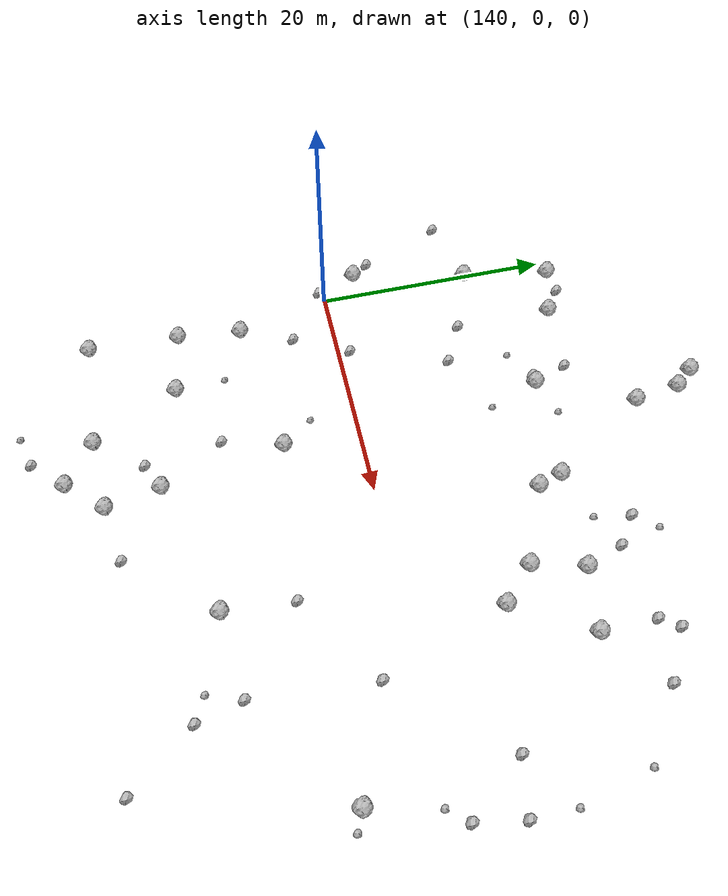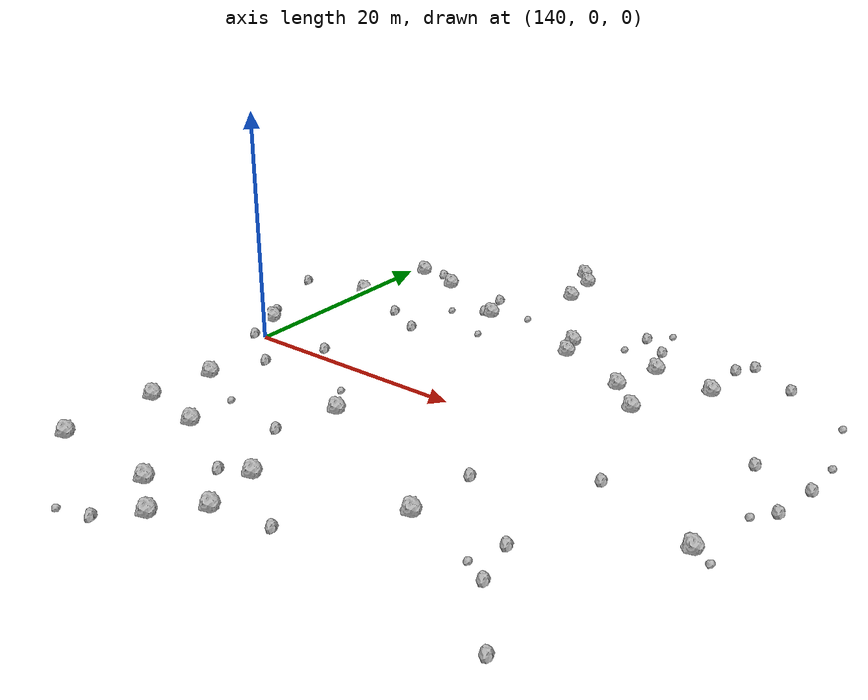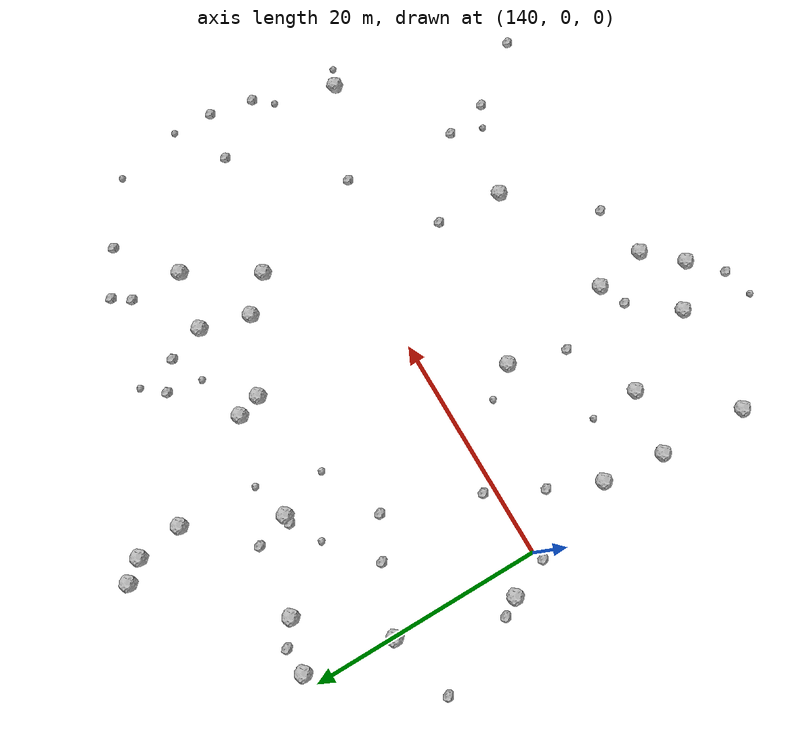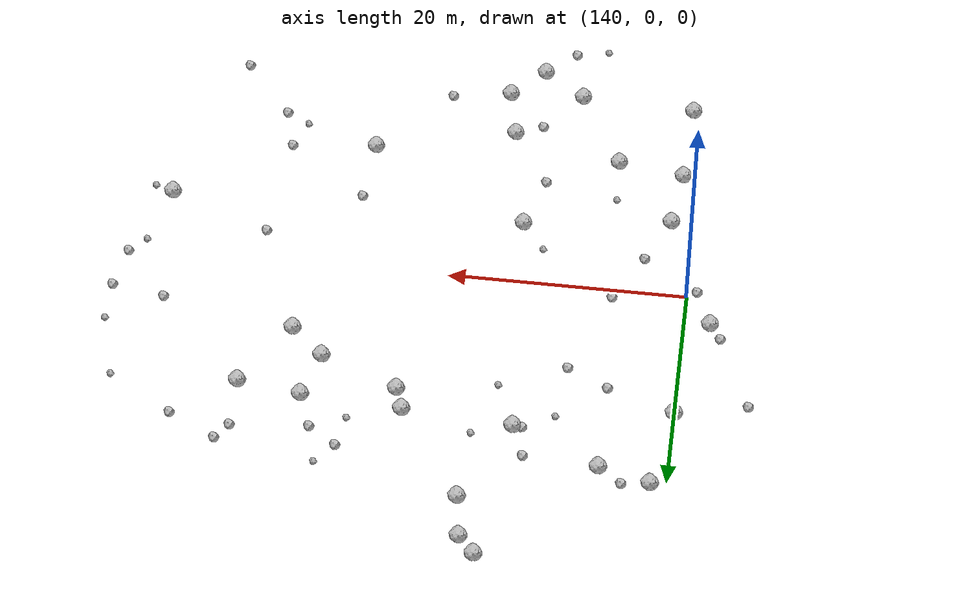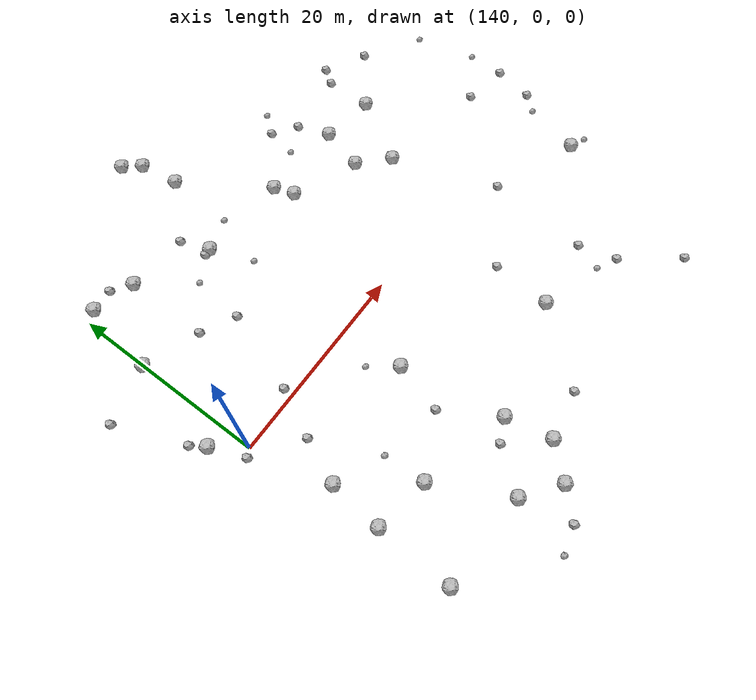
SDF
<sdf version="1.6">
 <world name="default">
  <include><uri>model://sun</uri></include>
  <model name="rock1_4_2">
   <include><uri>model://rock1</uri><pose>175.6944459059037 13.775110313037565 0.5 0 0 0</pose></include>
  </model>
  <model name="rock1_4_3">
   <include><uri>model://rock1</uri><pose>141.09596691448638 -21.29481997495491 0.5 0 0 0</pose></include>
  </model>
  <model name="rock1_4_4">
   <include><uri>model://rock1</uri><pose>154.2699961229659 -24.46903517349388 0.5 0 0 0</pose></include>
  </model>
  <model name="rock1_4_5">
   <include><uri>model://rock1</uri><pose>162.69205032178948 13.077078027829835 0.5 0 0 0</pose></include>
  </model>
  <model name="rock1_4_6">
   <include><uri>model://rock1</uri><pose>157.0335022908318 -21.496144907240357 0.5 0 0 0</pose></include>
  </model>
  <model name="rock1_4_7">
   <include><uri>model://rock1</uri><pose>155.87906079806712 27.608210088360202 0.5 0 0 0</pose></include>
  </model>
  <model name="rock1_4_8">
   <include><uri>model://rock1</uri><pose>172.02147918555733 7.5741311580457165 0.5 0 0 0</pose></include>
  </model>
  <model name="rock1_4_9">
   <include><uri>model://rock1</uri><pose>154.50811895226937 29.241986406481935 0.5 0 0 0</pose></include>
  </model>
  <model name="rock1_4_10">
   <include><uri>model://rock1</uri><pose>137.83746832260493 3.0440760301310377 0.5 0 0 0</pose></include>
  </model>
  <model name="rock1_4_11">
   <include><uri>model://rock1</uri><pose>156.12093923704228 -16.849315882062417 0.5 0 0 0</pose></include>
  </model>
  <model name="rock1_4_12">
   <include><uri>model://rock1</uri><pose>141.37720046236473 -13.509726205467892 0.5 0 0 0</pose></include>
  </model>
  <model name="rock1_4_13">
   <include><uri>model://rock1</uri><pose>146.94322893879323 -14.437348020025134 0.5 0 0 0</pose></include>
  </model>
  <model name="rock1_4_14">
   <include><uri>model://rock1</uri><pose>145.59096400964364 19.274046710064276 0.5 0 0 0</pose></include>
  </model>
  <model name="rock1_4_15">
   <include><uri>model://rock1</uri><pose>167.86525709673396 -13.83897023358315 0.5 0 0 0</pose></include>
  </model>
  <model name="rock1_4_16">
   <include><uri>model://rock1</uri><pose>162.00206621557922 15.150213531984853 0.5 0 0 0</pose></include>
  </model>
  <model name="rock1_4_17">
   <include><uri>model://rock1</uri><pose>184.35625267277152 -6.431331935811961 0.5 0 0 0</pose></include>
  </model>
  <model name="rock1_4_18">
   <include><uri>model://rock1</uri><pose>170.3818155655479 14.598203242819622 0.5 0 0 0</pose></include>
  </model>
  <model name="rock1_4_19">
   <include><uri>model://rock1</uri><pose>154.34425374263398 -6.411300522886943 0.5 0 0 0</pose></include>
  </model>
  <model name="rock1_4_20">
   <include><uri>model://rock1</uri><pose>169.23058803726173 10.273370423694153 0.5 0 0 0</pose></include>
  </model>
  <model name="rock1_4_21">
   <include><uri>model://rock1</uri><pose>141.94692703605827 -8.055627840287798 0.5 0 0 0</pose></include>
  </model>
  <model name="rock1_4_22">
   <include><uri>model://rock1</uri><pose>141.330040406301 20.46624069922151 0.5 0 0 0</pose></include>
  </model>
  <model name="rock1_4_23">
   <include><uri>model://rock1</uri><pose>140.01349206360055 12.940233239371068 0.5 0 0 0</pose></include>
  </model>
  <model name="rock1_4_24">
   <include><uri>model://rock1</uri><pose>156.47292029151484 23.6537280957931 0.5 0 0 0</pose></include>
  </model>
  <model name="rock1_4_25">
   <include><uri>model://rock1</uri><pose>152.85852675368747 15.835086865533327 0.5 0 0 0</pose></include>
  </model>
  <model name="rock1_4_26">
   <include><uri>model://rock1</uri><pose>150.74742916535456 -21.824598272493695 0.5 0 0 0</pose></include>
  </model>
  <model name="rock2_4_0">
   <include><uri>model://rock2</uri><pose>180.64505052981377 17.759051534305357 0.3 0 0 0</pose></include>
  </model>
  <model name="rock2_4_1">
   <include><uri>model://rock2</uri><pose>136.8711705533388 4.5072837818091 0.3 0 0 0</pose></include>
  </model>
  <model name="rock2_4_2">
   <include><uri>model://rock2</uri><pose>174.9992102431872 -13.116510445718689 0.3 0 0 0</pose></include>
  </model>
  <model name="rock2_4_3">
   <include><uri>model://rock2</uri><pose>143.61925458666633 20.708200200981643 0.3 0 0 0</pose></include>
  </model>
  <model name="rock2_4_4">
   <include><uri>model://rock2</uri><pose>168.24640421859175 -7.92007268458741 0.3 0 0 0</pose></include>
  </model>
  <model name="rock2_4_5">
   <include><uri>model://rock2</uri><pose>134.06451428010502 11.51712592995775 0.3 0 0 0</pose></include>
  </model>
  <model name="rock2_4_6">
   <include><uri>model://rock2</uri><pose>145.5946187055917 10.900253418275518 0.3 0 0 0</pose></include>
  </model>
  <model name="rock2_4_7">
   <include><uri>model://rock2</uri><pose>183.17892870975456 5.4032468570780665 0.3 0 0 0</pose></include>
  </model>
  <model name="rock2_4_8">
   <include><uri>model://rock2</uri><pose>187.62079035843973 4.595555314567932 0.3 0 0 0</pose></include>
  </model>
  <model name="rock2_4_9">
   <include><uri>model://rock2</uri><pose>151.7494519709884 -26.988151672336727 0.3 0 0 0</pose></include>
  </model>
  <model name="rock2_4_10">
   <include><uri>model://rock2</uri><pose>139.16424685602405 -0.4219566243558788 0.3 0 0 0</pose></include>
  </model>
  <model name="rock2_4_11">
   <include><uri>model://rock2</uri><pose>152.0926618036832 15.844517128144354 0.3 0 0 0</pose></include>
  </model>
  <model name="rock2_4_12">
   <include><uri>model://rock2</uri><pose>175.7610557903555 -2.986379773497621 0.3 0 0 0</pose></include>
  </model>
  <model name="rock2_4_13">
   <include><uri>model://rock2</uri><pose>146.14323772260894 0.9855478048732564 0.3 0 0 0</pose></include>
  </model>
  <model name="rock2_4_14">
   <include><uri>model://rock2</uri><pose>180.0871896122771 -22.22577383214952 0.3 0 0 0</pose></include>
  </model>
  <model name="rock2_4_15">
   <include><uri>model://rock2</uri><pose>151.72755040667894 18.805328989654456 0.3 0 0 0</pose></include>
  </model>
  <model name="rock2_4_16">
   <include><uri>model://rock2</uri><pose>153.8189873713432 -17.89940713672267 0.3 0 0 0</pose></include>
  </model>
  <model name="rock2_4_17">
   <include><uri>model://rock2</uri><pose>166.84656973116665 19.529184454351814 0.3 0 0 0</pose></include>
  </model>
  <model name="rock2_4_18">
   <include><uri>model://rock2</uri><pose>143.80732673902068 -3.6450524268368447 0.3 0 0 0</pose></include>
  </model>
  <model name="rock2_4_19">
   <include><uri>model://rock2</uri><pose>175.98295710264094 -16.921278205841148 0.3 0 0 0</pose></include>
  </model>
  <model name="rock2_4_20">
   <include><uri>model://rock2</uri><pose>175.61360918967128 18.454818456287477 0.3 0 0 0</pose></include>
  </model>
  <model name="rock2_4_21">
   <include><uri>model://rock2</uri><pose>169.19799350617438 17.842533875406858 0.3 0 0 0</pose></include>
  </model>
  <model name="rock2_4_22">
   <include><uri>model://rock2</uri><pose>161.9743882891295 -20.695077262498504 0.3 0 0 0</pose></include>
  </model>
  <model name="rock2_4_23">
   <include><uri>model://rock2</uri><pose>186.93474856881636 0.6914706669599688 0.3 0 0 0</pose></include>
  </model>
  <model name="rock2_4_24">
   <include><uri>model://rock2</uri><pose>176.63868994754634 19.95500876488029 0.3 0 0 0</pose></include>
  </model>
  <model name="rock2_4_25">
   <include><uri>model://rock2</uri><pose>152.8981897235795 -11.414862821104037 0.3 0 0 0</pose></include>
  </model>
  <model name="rock2_4_26">
   <include><uri>model://rock2</uri><pose>149.01958948393474 9.129438450290309 0.3 0 0 0</pose></include>
  </model>
  <model name="rock3_4_0">
   <include><uri>model://rock3</uri><pose>187.60429975040356 8.214567192918892 0.2 0 0 0</pose></include>
  </model>
  <model name="rock3_4_1">
   <include><uri>model://rock3</uri><pose>156.10957667016308 16.851791322384173 0.2 0 0 0</pose></include>
  </model>
  <model name="rock3_4_2">
   <include><uri>model://rock3</uri><pose>185.602699537292 -0.9141753880559449 0.2 0 0 0</pose></include>
  </model>
  <model name="rock3_4_3">
   <include><uri>model://rock3</uri><pose>185.87849621328618 -7.146023669402698 0.2 0 0 0</pose></include>
  </model>
  <model name="rock3_4_4">
   <include><uri>model://rock3</uri><pose>149.49087376038122 14.289837432592478 0.2 0 0 0</pose></include>
  </model>
  <model name="rock3_4_5">
   <include><uri>model://rock3</uri><pose>152.3529785993769 -3.7983175166600667 0.2 0 0 0</pose></include>
  </model>
  <model name="rock3_4_6">
   <include><uri>model://rock3</uri><pose>154.44792217248713 11.543494980215478 0.2 0 0 0</pose></include>
  </model>
  <model name="rock3_4_7">
   <include><uri>model://rock3</uri><pose>168.3134292273922 21.330635087433762 0.2 0 0 0</pose></include>
  </model>
  <model name="rock3_4_8">
   <include><uri>model://rock3</uri><pose>186.08679657283835 14.19203321132376 0.2 0 0 0</pose></include>
  </model>
  <model name="rock3_4_9">
   <include><uri>model://rock3</uri><pose>146.7149163922678 -10.20927404408711 0.2 0 0 0</pose></include>
  </model>
  <model name="rock3_4_10">
   <include><uri>model://rock3</uri><pose>149.00578923817835 -27.734343846822412 0.2 0 0 0</pose></include>
  </model>
  <model name="rock3_4_11">
   <include><uri>model://rock3</uri><pose>166.29948352167003 16.493135704584994 0.2 0 0 0</pose></include>
  </model>
  <model name="rock3_4_12">
   <include><uri>model://rock3</uri><pose>173.99383769383712 -15.924141493450009 0.2 0 0 0</pose></include>
  </model>
 </world>
</sdf>
